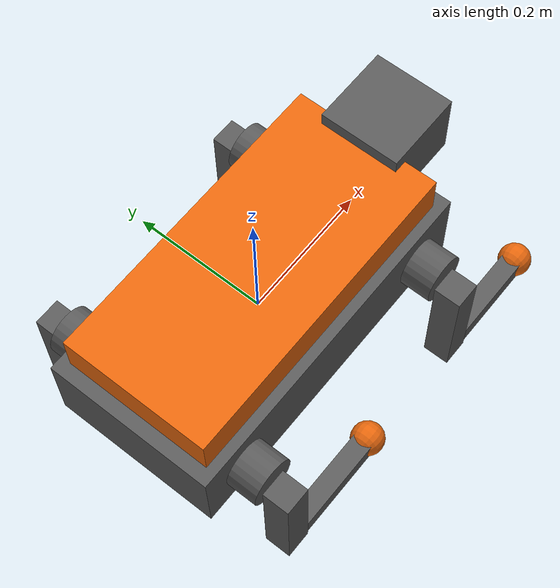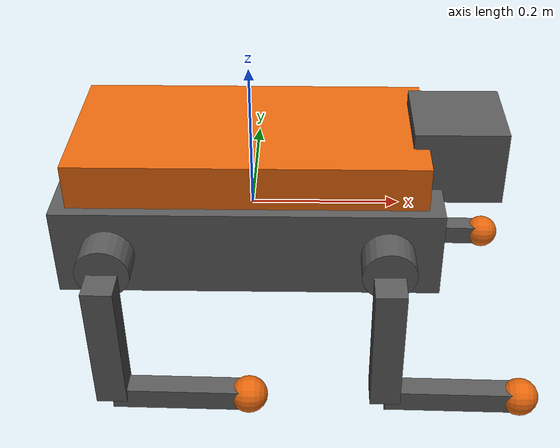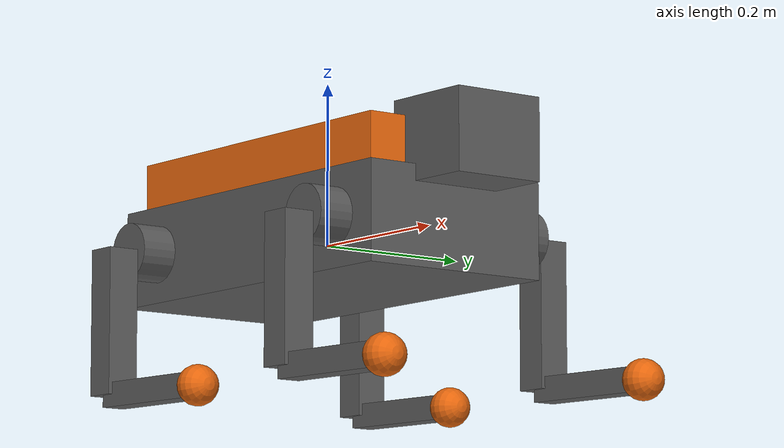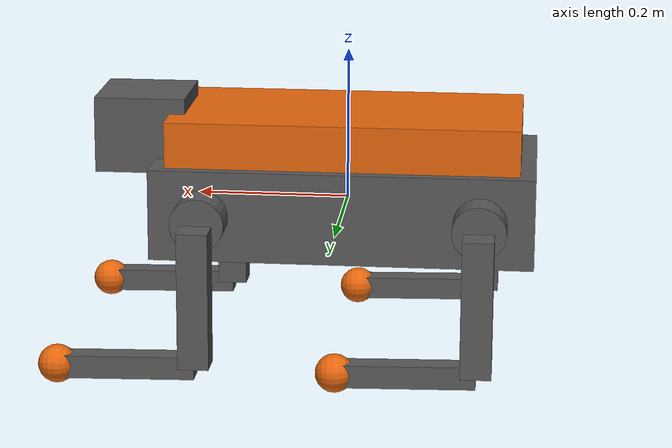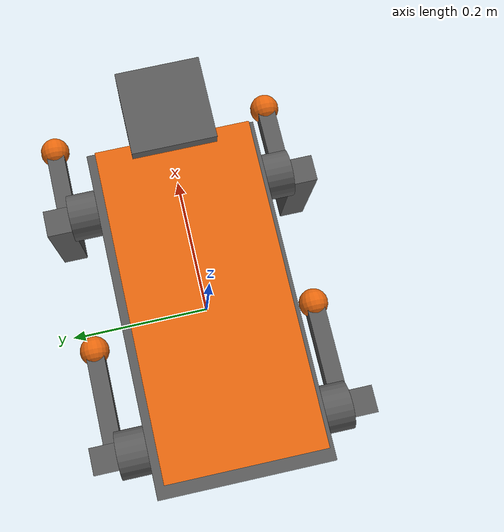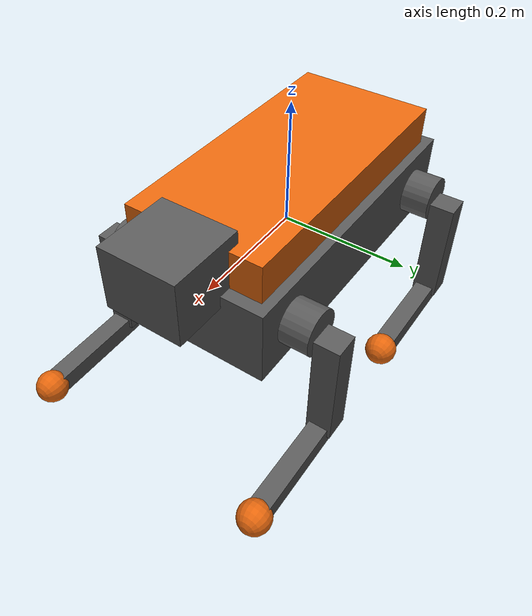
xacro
<?xml version="1.0"?>
<robot name="dog_robot" xmlns:xacro="http://www.ros.org/wiki/xacro">
<!--Materilas-->
<material name="dog_grey">
  <color rgba="0.35 0.35 0.35 1.0"/>
</material>
<material name="dog_orange">
  <color rgba="0.9 0.4 0.05 1.0"/>
</material>
<xacro:property name="hip_length" value="0.06"/>
<xacro:property name="hip_radius" value="0.035"/>
<xacro:property name="thigh_length" value="0.18"/>
<xacro:property name="thigh_width" value="0.04"/>
<xacro:property name="shin_length" value="0.18"/>
<xacro:property name="shin_width" value="0.03"/>
<xacro:property name="foot_radius" value="0.025"/>
<!-- base link-->
  <link name="base_link">
   <visual>
      <origin xyz="0 0 0" rpy="0 0 0"/>
      <geometry>
        <box size="0.5 0.25 0.12"/>
      </geometry>
      <material name="dog_grey"/>
   </visual>
<collision>
 <origin xyz="0 0 0" rpy="0 0 0"/>
 <geometry>
   <box size="0.5 0.25 0.12"/>
 </geometry>
</collision>
<inertial>
 <mass value="8.0"/>
 <origin xyz="0 0 0" rpy="0 0 0"/>
 <inertia ixx="0.05" ixy="0.0" ixz="0.0" iyy="0.08" iyz="0.0" izz="0.09"/>
 </inertial>
</link>
<!-- ==================== HEAD LINK ==================== -->
<link name="head_link">
<visual>
<origin xyz="0 0 0" rpy="0 0 0"/>
<geometry>
<box size="0.12 0.12 0.10"/>
</geometry>
<material name="dog_grey"/>
</visual>
<collision>
<origin xyz="0 0 0" rpy="0 0 0"/>
<geometry>
<box size="0.12 0.12 0.10"/>
</geometry>
</collision>
<inertial>
<mass value="0.4"/>
<origin xyz="0 0 0" rpy="0 0 0"/>
<inertia ixx="0.001" ixy="0.0" ixz="0.0" iyy="0.001" iyz="0.0" izz="0.001"/>
</inertial>
</link>
<joint name="head_joint" type="revolute">
<parent link="base_link"/>
<child link="head_link"/>
<origin xyz="0.27 0 0.09" rpy="0 0 0"/>
<axis xyz="0 0 1"/>
<limit lower="-0.9" upper="0.9" effort="5.0" velocity="1.0"/>
</joint>
<!--  BODY SHELL  -->
<link name="body_shell">
<visual>
<origin xyz="0 0 0" rpy="0 0 0"/>
<geometry>
<box size="0.46 0.22 0.06"/>
</geometry>
<material name="dog_orange"/>
</visual>
</link>
<joint name="body_shell_fixed" type="fixed">
<parent link="base_link"/>
<child link="body_shell"/>
<origin xyz="0 0 0.09" rpy="0 0 0"/>
</joint>
<!-- ==================== LEG MACRO ==================== -->
<xacro:macro name="leg" params="prefix x_reflect y_reflect hip_x hip_y">
<!-- ==================== HIP ==================== -->
<link name="${prefix}_hip">
<visual>
<origin xyz="0 0 0" rpy="1.5708 0 0"/>
<geometry>
<cylinder radius="${hip_radius}" length="${hip_length}"/>
</geometry>
<material name="dog_grey"/>
</visual>
<collision>
<origin xyz="0 0 0" rpy="1.5708 0 0"/>
<geometry>
<cylinder radius="${hip_radius}" length="${hip_length}"/>
</geometry>
</collision>
<inertial>
<mass value="0.3"/>
<origin xyz="0 0 0" rpy="0 0 0"/>
<inertia ixx="0.0003" ixy="0.0" ixz="0.0" iyy="0.0003" iyz="0.0" izz="0.0003"/>
</inertial>
</link>
<joint name="${prefix}_hip_joint" type="revolute">
<parent link="base_link"/>
<child link="${prefix}_hip"/>
<origin xyz="${hip_x} ${hip_y} 0" rpy="0 0 0"/>
<axis xyz="1 0 0"/>
<limit lower="-0.7" upper="0.7" effort="20.0" velocity="10.0"/>
</joint>
<!-- ==================== THIGH ==================== -->
<link name="${prefix}_thigh">
<visual>
<origin xyz="0 0 ${-thigh_length/2}" rpy="0 0 0"/>
<geometry>
<box size="${thigh_width} ${thigh_width} ${thigh_length}"/>
</geometry>
<material name="dog_grey"/>
</visual>
<collision>
<origin xyz="0 0 ${-thigh_length/2}" rpy="0 0 0"/>
<geometry>
<box size="${thigh_width} ${thigh_width} ${thigh_length}"/>
</geometry>
</collision>
<inertial>
<mass value="0.6"/>
<origin xyz="0 0 ${-thigh_length/2}" rpy="0 0 0"/>
<inertia ixx="0.002" ixy="0.0" ixz="0.0" iyy="0.002" iyz="0.0" izz="0.0005"/>
</inertial>
</link>
<joint name="${prefix}_thigh_joint" type="revolute">
<parent link="${prefix}_hip"/>
<child link="${prefix}_thigh"/>
<origin xyz="0 ${0.05 * y_reflect} 0" rpy="0 0 0"/>
<axis xyz="0 1 0"/>
<limit lower="-1.57" upper="1.57" effort="20.0" velocity="10.0"/>
</joint>
<!-- ==================== SHIN ==================== -->
<link name="${prefix}_shin">
<visual>
<origin xyz="0 0 ${-shin_length/2}" rpy="0 0 0"/>
<geometry>
<box size="${shin_width} ${shin_width} ${shin_length}"/>
</geometry>
<material name="dog_grey"/>
</visual>
<collision>
<origin xyz="0 0 ${-shin_length/2}" rpy="0 0 0"/>
<geometry>
<box size="${shin_width} ${shin_width} ${shin_length}"/>
</geometry>
</collision>
<inertial>
<mass value="0.25"/>
<origin xyz="0 0 ${-shin_length/2}" rpy="0 0 0"/>
<inertia ixx="0.001" ixy="0.0" ixz="0.0" iyy="0.001" iyz="0.0" izz="0.0002"/>
</inertial>
</link>
<joint name="${prefix}_shin_joint" type="revolute">
<parent link="${prefix}_thigh"/>
<child link="${prefix}_shin"/>
<origin xyz="0 0 ${-thigh_length}" rpy="0 0 0"/>
<axis xyz="0 1 0"/>
<limit lower="-2.7" upper="-0.4" effort="20.0" velocity="10.0"/>
</joint>
<!-- FOOT -->
<link name="${prefix}_foot">
<visual>
<origin xyz="0 0 0" rpy="0 0 0"/>
<geometry>
<sphere radius="${foot_radius}"/>
</geometry>
<material name="dog_orange"/>
</visual>
<collision>
<origin xyz="0 0 0" rpy="0 0 0"/>
<geometry>
<sphere radius="${foot_radius}"/>
</geometry>
</collision>
<inertial>
<mass value="0.05"/>
<origin xyz="0 0 0" rpy="0 0 0"/>
<inertia ixx="0.00002" ixy="0.0" ixz="0.0" iyy="0.00002" iyz="0.0" izz="0.00002"/>
</inertial>
</link>
<joint name="${prefix}_foot_fixed" type="fixed">
<parent link="${prefix}_shin"/>
<child link="${prefix}_foot"/>
<origin xyz="0 0 ${-shin_length}" rpy="0 0 0"/>
</joint>
</xacro:macro>
<!--  CALL LEG MACRO — ALL FOUR LEGS -->
<xacro:leg prefix="FL" x_reflect="1" y_reflect="1" hip_x="0.18" hip_y="0.14"/>
<xacro:leg prefix="FR" x_reflect="1" y_reflect="-1" hip_x="0.18" hip_y="-0.14"/>
<xacro:leg prefix="RL" x_reflect="-1" y_reflect="1" hip_x="-0.18" hip_y="0.14"/>
<xacro:leg prefix="RR" x_reflect="-1" y_reflect="-1" hip_x="-0.18" hip_y="-0.14"/>
</robot>
